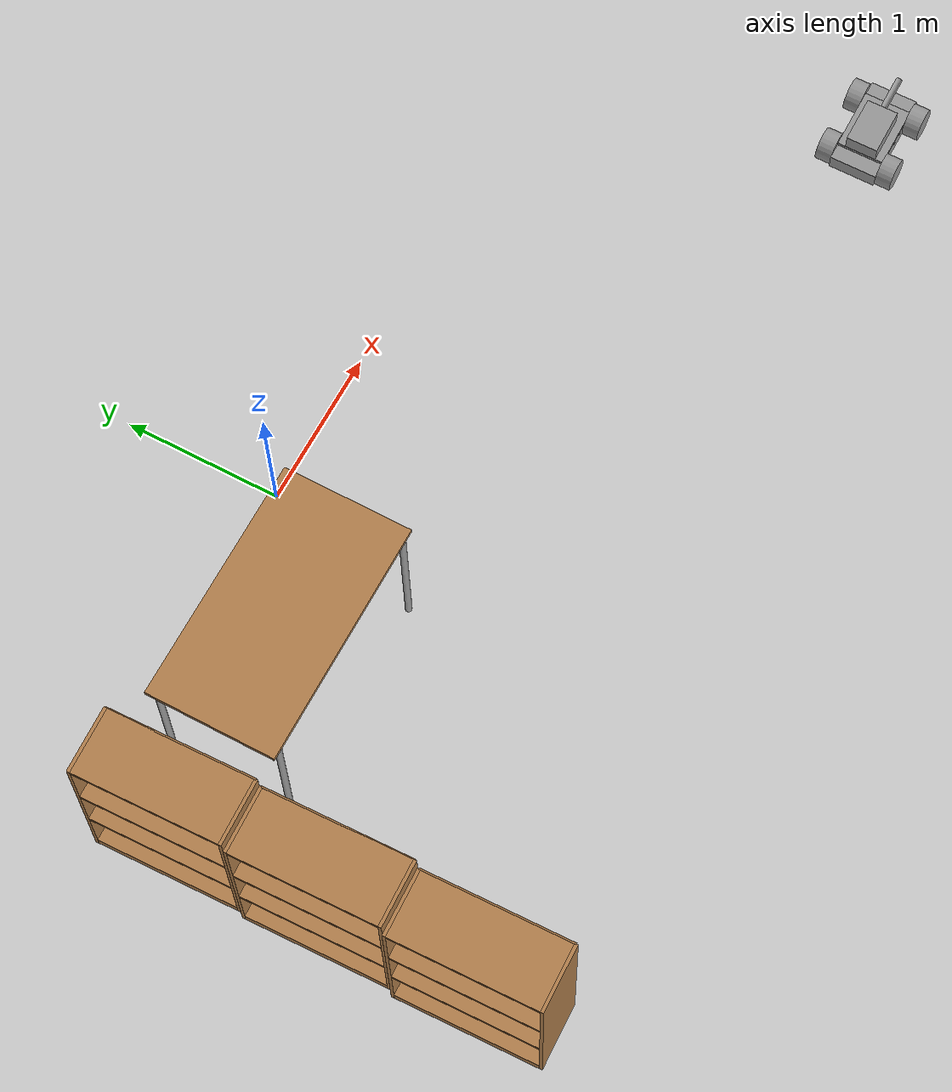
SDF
<sdf version="1.6">
 <world name="default">
  <model name="ground_plane">
   <static>1</static>
   <link name="link">
    <collision name="collision">
     <geometry><plane><normal>0 0 1</normal><size>100 100</size></plane></geometry>
     <surface>
      <contact><collide_bitmask>65535</collide_bitmask></contact>
      <friction><ode><mu>100</mu><mu2>50</mu2></ode></friction>
     </surface>
    </collision>
    <visual name="visual">
     <cast_shadows>0</cast_shadows>
     <geometry><plane><normal>0 0 1</normal><size>100 100</size></plane></geometry>
     <material>
      <script><uri>file://media/materials/scripts/gazebo.material</uri><name>Gazebo/Grey</name></script>
     </material>
    </visual>
   </link>
  </model>
  <model name="table_0">
   <static>1</static>
   <link name="link">
    <collision name="surface">
     <pose>0 0 1 0 -0 0</pose>
     <geometry><box><size>1.5 0.8 0.03</size></box></geometry>
     <surface><friction><ode><mu>0.6</mu><mu2>0.6</mu2></ode></friction></surface>
    </collision>
    <visual name="visual1">
     <pose>0 0 1 0 -0 0</pose>
     <geometry><box><size>1.5 0.8 0.03</size></box></geometry>
     <material>
      <script><uri>file://media/materials/scripts/gazebo.material</uri><name>Gazebo/Wood</name></script>
     </material>
    </visual>
    <collision name="front_left_leg">
     <pose>0.68 0.38 0.5 0 -0 0</pose>
     <geometry><cylinder><radius>0.02</radius><length>1</length></cylinder></geometry>
    </collision>
    <visual name="front_left_leg">
     <pose>0.68 0.38 0.5 0 -0 0</pose>
     <geometry><cylinder><radius>0.02</radius><length>1</length></cylinder></geometry>
     <material>
      <script><uri>file://media/materials/scripts/gazebo.material</uri><name>Gazebo/Grey</name></script>
     </material>
    </visual>
    <collision name="front_right_leg">
     <pose>0.68 -0.38 0.5 0 -0 0</pose>
     <geometry><cylinder><radius>0.02</radius><length>1</length></cylinder></geometry>
    </collision>
    <visual name="front_right_leg">
     <pose>0.68 -0.38 0.5 0 -0 0</pose>
     <geometry><cylinder><radius>0.02</radius><length>1</length></cylinder></geometry>
     <material>
      <script><uri>file://media/materials/scripts/gazebo.material</uri><name>Gazebo/Grey</name></script>
     </material>
    </visual>
    <collision name="back_right_leg">
     <pose>-0.68 -0.38 0.5 0 -0 0</pose>
     <geometry><cylinder><radius>0.02</radius><length>1</length></cylinder></geometry>
    </collision>
    <visual name="back_right_leg">
     <pose>-0.68 -0.38 0.5 0 -0 0</pose>
     <geometry><cylinder><radius>0.02</radius><length>1</length></cylinder></geometry>
     <material>
      <script><uri>file://media/materials/scripts/gazebo.material</uri><name>Gazebo/Grey</name></script>
     </material>
    </visual>
    <collision name="back_left_leg">
     <pose>-0.68 0.38 0.5 0 -0 0</pose>
     <geometry><cylinder><radius>0.02</radius><length>1</length></cylinder></geometry>
    </collision>
    <visual name="back_left_leg">
     <pose>-0.68 0.38 0.5 0 -0 0</pose>
     <geometry><cylinder><radius>0.02</radius><length>1</length></cylinder></geometry>
     <material>
      <script><uri>file://media/materials/scripts/gazebo.material</uri><name>Gazebo/Grey</name></script>
     </material>
    </visual>
   </link>
   <pose>-0.933659 -0.643381 0 0 -0 0</pose>
  </model>
  <model name="bookshelf_0">
   <static>1</static>
   <link name="link">
    <inertial><mass>1</mass></inertial>
    <collision name="back">
     <pose>0 0.005 0.6 0 -0 0</pose>
     <geometry><box><size>0.9 0.01 1.2</size></box></geometry>
    </collision>
    <visual name="visual1">
     <pose>0 0.005 0.6 0 -0 0</pose>
     <geometry><box><size>0.9 0.01 1.2</size></box></geometry>
     <material>
      <script><uri>file://media/materials/scripts/gazebo.material</uri><name>Gazebo/Wood</name></script>
     </material>
    </visual>
    <collision name="left_side">
     <pose>0.45 -0.195 0.6 0 -0 0</pose>
     <geometry><box><size>0.02 0.4 1.2</size></box></geometry>
    </collision>
    <visual name="visual2">
     <pose>0.45 -0.195 0.6 0 -0 0</pose>
     <geometry><box><size>0.02 0.4 1.2</size></box></geometry>
     <material>
      <script><uri>file://media/materials/scripts/gazebo.material</uri><name>Gazebo/Wood</name></script>
     </material>
    </visual>
    <collision name="right_side">
     <pose>-0.45 -0.195 0.6 0 -0 0</pose>
     <geometry><box><size>0.02 0.4 1.2</size></box></geometry>
    </collision>
    <visual name="visual3">
     <pose>-0.45 -0.195 0.6 0 -0 0</pose>
     <geometry><box><size>0.02 0.4 1.2</size></box></geometry>
     <material>
      <script><uri>file://media/materials/scripts/gazebo.material</uri><name>Gazebo/Wood</name></script>
     </material>
    </visual>
    <collision name="bottom">
     <pose>0 -0.195 0.03 0 -0 0</pose>
     <geometry><box><size>0.88 0.4 0.06</size></box></geometry>
    </collision>
    <visual name="visual4">
     <pose>0 -0.195 0.03 0 -0 0</pose>
     <geometry><box><size>0.88 0.4 0.06</size></box></geometry>
     <material>
      <script><uri>file://media/materials/scripts/gazebo.material</uri><name>Gazebo/Wood</name></script>
     </material>
    </visual>
    <collision name="top">
     <pose>0 -0.195 1.19 0 -0 0</pose>
     <geometry><box><size>0.88 0.4 0.02</size></box></geometry>
    </collision>
    <visual name="visual5">
     <pose>0 -0.195 1.19 0 -0 0</pose>
     <geometry><box><size>0.88 0.4 0.02</size></box></geometry>
     <material>
      <script><uri>file://media/materials/scripts/gazebo.material</uri><name>Gazebo/Wood</name></script>
     </material>
    </visual>
    <collision name="low_shelf">
     <pose>0 -0.195 0.43 0 -0 0</pose>
     <geometry><box><size>0.88 0.4 0.02</size></box></geometry>
    </collision>
    <visual name="visual6">
     <pose>0 -0.195 0.43 0 -0 0</pose>
     <geometry><box><size>0.88 0.4 0.02</size></box></geometry>
     <material>
      <script><uri>file://media/materials/scripts/gazebo.material</uri><name>Gazebo/Wood</name></script>
     </material>
    </visual>
    <collision name="high_shelf">
     <pose>0 -0.195 0.8 0 -0 0</pose>
     <geometry><box><size>0.88 0.4 0.02</size></box></geometry>
    </collision>
    <visual name="visual7">
     <pose>0 -0.195 0.8 0 -0 0</pose>
     <geometry><box><size>0.88 0.4 0.02</size></box></geometry>
     <material>
      <script><uri>file://media/materials/scripts/gazebo.material</uri><name>Gazebo/Wood</name></script>
     </material>
    </visual>
   </link>
   <pose>-1.89229 -0.61162 0 0 0 -1.53942</pose>
  </model>
  <model name="bookshelf_0_clone">
   <static>1</static>
   <link name="link">
    <inertial><mass>1</mass></inertial>
    <collision name="back">
     <pose>0 0.005 0.6 0 -0 0</pose>
     <geometry><box><size>0.9 0.01 1.2</size></box></geometry>
    </collision>
    <visual name="visual1">
     <pose>0 0.005 0.6 0 -0 0</pose>
     <geometry><box><size>0.9 0.01 1.2</size></box></geometry>
     <material>
      <script><uri>file://media/materials/scripts/gazebo.material</uri><name>Gazebo/Wood</name></script>
     </material>
    </visual>
    <collision name="left_side">
     <pose>0.45 -0.195 0.6 0 -0 0</pose>
     <geometry><box><size>0.02 0.4 1.2</size></box></geometry>
    </collision>
    <visual name="visual2">
     <pose>0.45 -0.195 0.6 0 -0 0</pose>
     <geometry><box><size>0.02 0.4 1.2</size></box></geometry>
     <material>
      <script><uri>file://media/materials/scripts/gazebo.material</uri><name>Gazebo/Wood</name></script>
     </material>
    </visual>
    <collision name="right_side">
     <pose>-0.45 -0.195 0.6 0 -0 0</pose>
     <geometry><box><size>0.02 0.4 1.2</size></box></geometry>
    </collision>
    <visual name="visual3">
     <pose>-0.45 -0.195 0.6 0 -0 0</pose>
     <geometry><box><size>0.02 0.4 1.2</size></box></geometry>
     <material>
      <script><uri>file://media/materials/scripts/gazebo.material</uri><name>Gazebo/Wood</name></script>
     </material>
    </visual>
    <collision name="bottom">
     <pose>0 -0.195 0.03 0 -0 0</pose>
     <geometry><box><size>0.88 0.4 0.06</size></box></geometry>
    </collision>
    <visual name="visual4">
     <pose>0 -0.195 0.03 0 -0 0</pose>
     <geometry><box><size>0.88 0.4 0.06</size></box></geometry>
     <material>
      <script><uri>file://media/materials/scripts/gazebo.material</uri><name>Gazebo/Wood</name></script>
     </material>
    </visual>
    <collision name="top">
     <pose>0 -0.195 1.19 0 -0 0</pose>
     <geometry><box><size>0.88 0.4 0.02</size></box></geometry>
    </collision>
    <visual name="visual5">
     <pose>0 -0.195 1.19 0 -0 0</pose>
     <geometry><box><size>0.88 0.4 0.02</size></box></geometry>
     <material>
      <script><uri>file://media/materials/scripts/gazebo.material</uri><name>Gazebo/Wood</name></script>
     </material>
    </visual>
    <collision name="low_shelf">
     <pose>0 -0.195 0.43 0 -0 0</pose>
     <geometry><box><size>0.88 0.4 0.02</size></box></geometry>
    </collision>
    <visual name="visual6">
     <pose>0 -0.195 0.43 0 -0 0</pose>
     <geometry><box><size>0.88 0.4 0.02</size></box></geometry>
     <material>
      <script><uri>file://media/materials/scripts/gazebo.material</uri><name>Gazebo/Wood</name></script>
     </material>
    </visual>
    <collision name="high_shelf">
     <pose>0 -0.195 0.8 0 -0 0</pose>
     <geometry><box><size>0.88 0.4 0.02</size></box></geometry>
    </collision>
    <visual name="visual7">
     <pose>0 -0.195 0.8 0 -0 0</pose>
     <geometry><box><size>0.88 0.4 0.02</size></box></geometry>
     <material>
      <script><uri>file://media/materials/scripts/gazebo.material</uri><name>Gazebo/Wood</name></script>
     </material>
    </visual>
   </link>
   <pose>-1.88638 -1.55332 0 0 0 -1.53942</pose>
  </model>
  <model name="bookshelf_0_clone_0">
   <static>1</static>
   <link name="link">
    <inertial><mass>1</mass></inertial>
    <collision name="back">
     <pose>0 0.005 0.6 0 -0 0</pose>
     <geometry><box><size>0.9 0.01 1.2</size></box></geometry>
    </collision>
    <visual name="visual1">
     <pose>0 0.005 0.6 0 -0 0</pose>
     <geometry><box><size>0.9 0.01 1.2</size></box></geometry>
     <material>
      <script><uri>file://media/materials/scripts/gazebo.material</uri><name>Gazebo/Wood</name></script>
     </material>
    </visual>
    <collision name="left_side">
     <pose>0.45 -0.195 0.6 0 -0 0</pose>
     <geometry><box><size>0.02 0.4 1.2</size></box></geometry>
    </collision>
    <visual name="visual2">
     <pose>0.45 -0.195 0.6 0 -0 0</pose>
     <geometry><box><size>0.02 0.4 1.2</size></box></geometry>
     <material>
      <script><uri>file://media/materials/scripts/gazebo.material</uri><name>Gazebo/Wood</name></script>
     </material>
    </visual>
    <collision name="right_side">
     <pose>-0.45 -0.195 0.6 0 -0 0</pose>
     <geometry><box><size>0.02 0.4 1.2</size></box></geometry>
    </collision>
    <visual name="visual3">
     <pose>-0.45 -0.195 0.6 0 -0 0</pose>
     <geometry><box><size>0.02 0.4 1.2</size></box></geometry>
     <material>
      <script><uri>file://media/materials/scripts/gazebo.material</uri><name>Gazebo/Wood</name></script>
     </material>
    </visual>
    <collision name="bottom">
     <pose>0 -0.195 0.03 0 -0 0</pose>
     <geometry><box><size>0.88 0.4 0.06</size></box></geometry>
    </collision>
    <visual name="visual4">
     <pose>0 -0.195 0.03 0 -0 0</pose>
     <geometry><box><size>0.88 0.4 0.06</size></box></geometry>
     <material>
      <script><uri>file://media/materials/scripts/gazebo.material</uri><name>Gazebo/Wood</name></script>
     </material>
    </visual>
    <collision name="top">
     <pose>0 -0.195 1.19 0 -0 0</pose>
     <geometry><box><size>0.88 0.4 0.02</size></box></geometry>
    </collision>
    <visual name="visual5">
     <pose>0 -0.195 1.19 0 -0 0</pose>
     <geometry><box><size>0.88 0.4 0.02</size></box></geometry>
     <material>
      <script><uri>file://media/materials/scripts/gazebo.material</uri><name>Gazebo/Wood</name></script>
     </material>
    </visual>
    <collision name="low_shelf">
     <pose>0 -0.195 0.43 0 -0 0</pose>
     <geometry><box><size>0.88 0.4 0.02</size></box></geometry>
    </collision>
    <visual name="visual6">
     <pose>0 -0.195 0.43 0 -0 0</pose>
     <geometry><box><size>0.88 0.4 0.02</size></box></geometry>
     <material>
      <script><uri>file://media/materials/scripts/gazebo.material</uri><name>Gazebo/Wood</name></script>
     </material>
    </visual>
    <collision name="high_shelf">
     <pose>0 -0.195 0.8 0 -0 0</pose>
     <geometry><box><size>0.88 0.4 0.02</size></box></geometry>
    </collision>
    <visual name="visual7">
     <pose>0 -0.195 0.8 0 -0 0</pose>
     <geometry><box><size>0.88 0.4 0.02</size></box></geometry>
     <material>
      <script><uri>file://media/materials/scripts/gazebo.material</uri><name>Gazebo/Wood</name></script>
     </material>
    </visual>
   </link>
   <pose>-1.88893 -2.49325 0 0 0 -1.53942</pose>
  </model>
  <model name="TankBot_0">
   <link name="link_0">
    <pose>4.02291 -0.912872 0.464375 0 -0 0</pose>
    <inertial>
     <mass>1</mass>
     <inertia>
      <ixx>0.166667</ixx>
      <ixy>0</ixy>
      <ixz>0</ixz>
      <iyy>0.166667</iyy>
      <iyz>0</iyz>
      <izz>0.166667</izz>
     </inertia>
    </inertial>
    <visual name="visual">
     <geometry><box><size>0.6 0.3 0.1</size></box></geometry>
     <material>
      <lighting>1</lighting>
      <script><uri>file://media/materials/scripts/gazebo.material</uri><name>Gazebo/Grey</name></script>
      <shader type="pixel"><normal_map>__default__</normal_map></shader>
      <ambient>0.3 0.3 0.3 1</ambient>
      <diffuse>0.7 0.7 0.7 1</diffuse>
      <specular>0.01 0.01 0.01 1</specular>
      <emissive>0 0 0 1</emissive>
     </material>
    </visual>
    <collision name="collision">
     <geometry><box><size>0.6 0.3 0.1</size></box></geometry>
     <surface>
      <friction>
       <ode><mu>1</mu><mu2>1</mu2><fdir1>0 0 0</fdir1><slip1>0</slip1><slip2>0</slip2></ode>
       <torsional>
        <coefficient>1</coefficient>
        <patch_radius>0</patch_radius>
        <surface_radius>0</surface_radius>
        <use_patch_radius>1</use_patch_radius>
        <ode><slip>0</slip></ode>
       </torsional>
      </friction>
      <bounce><restitution_coefficient>0</restitution_coefficient><threshold>1e+06</threshold></bounce>
      <contact>
       <collide_without_contact>0</collide_without_contact>
       <collide_without_contact_bitmask>1</collide_without_contact_bitmask>
       <collide_bitmask>1</collide_bitmask>
       <ode>
        <soft_cfm>0</soft_cfm>
        <soft_erp>0.2</soft_erp>
        <kp>1e+13</kp>
        <kd>1</kd>
        <max_vel>0.01</max_vel>
        <min_depth>0</min_depth>
       </ode>
       <bullet>
        <split_impulse>1</split_impulse>
        <split_impulse_penetration_threshold>-0.01</split_impulse_penetration_threshold>
        <soft_cfm>0</soft_cfm>
        <soft_erp>0.2</soft_erp>
        <kp>1e+13</kp>
        <kd>1</kd>
       </bullet>
      </contact>
     </surface>
    </collision>
   </link>
   <link name="link_1_clone">
    <pose>3.82291 -1.11288 0.464375 1.5707 -0 0</pose>
    <inertial>
     <mass>1</mass>
     <inertia><ixx>0.145833</ixx><ixy>0</ixy><ixz>0</ixz><iyy>0.145833</iyy><iyz>0</iyz><izz>0.125</izz></inertia>
    </inertial>
    <visual name="visual">
     <geometry><cylinder><radius>0.1</radius><length>0.1</length></cylinder></geometry>
     <material>
      <lighting>1</lighting>
      <script><uri>file://media/materials/scripts/gazebo.material</uri><name>Gazebo/Grey</name></script>
      <shader type="pixel"><normal_map>__default__</normal_map></shader>
      <ambient>0.3 0.3 0.3 1</ambient>
      <diffuse>0.7 0.7 0.7 1</diffuse>
      <specular>0.01 0.01 0.01 1</specular>
      <emissive>0 0 0 1</emissive>
     </material>
    </visual>
    <collision name="collision">
     <geometry><cylinder><radius>0.1</radius><length>0.1</length></cylinder></geometry>
     <surface>
      <friction>
       <ode><mu>1</mu><mu2>1</mu2><fdir1>0 0 0</fdir1><slip1>0</slip1><slip2>0</slip2></ode>
       <torsional>
        <coefficient>1</coefficient>
        <patch_radius>0</patch_radius>
        <surface_radius>0</surface_radius>
        <use_patch_radius>1</use_patch_radius>
        <ode><slip>0</slip></ode>
       </torsional>
      </friction>
      <bounce><restitution_coefficient>0</restitution_coefficient><threshold>1e+06</threshold></bounce>
      <contact>
       <collide_without_contact>0</collide_without_contact>
       <collide_without_contact_bitmask>1</collide_without_contact_bitmask>
       <collide_bitmask>1</collide_bitmask>
       <ode>
        <soft_cfm>0</soft_cfm>
        <soft_erp>0.2</soft_erp>
        <kp>1e+13</kp>
        <kd>1</kd>
        <max_vel>0.01</max_vel>
        <min_depth>0</min_depth>
       </ode>
       <bullet>
        <split_impulse>1</split_impulse>
        <split_impulse_penetration_threshold>-0.01</split_impulse_penetration_threshold>
        <soft_cfm>0</soft_cfm>
        <soft_erp>0.2</soft_erp>
        <kp>1e+13</kp>
        <kd>1</kd>
       </bullet>
      </contact>
     </surface>
    </collision>
   </link>
   <link name="link_1_clone_0">
    <pose>4.22291 -1.11288 0.464375 1.5707 -0 0</pose>
    <inertial>
     <mass>1</mass>
     <inertia><ixx>0.145833</ixx><ixy>0</ixy><ixz>0</ixz><iyy>0.145833</iyy><iyz>0</iyz><izz>0.125</izz></inertia>
    </inertial>
    <visual name="visual">
     <geometry><cylinder><radius>0.1</radius><length>0.1</length></cylinder></geometry>
     <material>
      <lighting>1</lighting>
      <script><uri>file://media/materials/scripts/gazebo.material</uri><name>Gazebo/Grey</name></script>
      <shader type="pixel"><normal_map>__default__</normal_map></shader>
      <ambient>0.3 0.3 0.3 1</ambient>
      <diffuse>0.7 0.7 0.7 1</diffuse>
      <specular>0.01 0.01 0.01 1</specular>
      <emissive>0 0 0 1</emissive>
     </material>
    </visual>
    <collision name="collision">
     <geometry><cylinder><radius>0.1</radius><length>0.1</length></cylinder></geometry>
     <surface>
      <friction>
       <ode><mu>1</mu><mu2>1</mu2><fdir1>0 0 0</fdir1><slip1>0</slip1><slip2>0</slip2></ode>
       <torsional>
        <coefficient>1</coefficient>
        <patch_radius>0</patch_radius>
        <surface_radius>0</surface_radius>
        <use_patch_radius>1</use_patch_radius>
        <ode><slip>0</slip></ode>
       </torsional>
      </friction>
      <bounce><restitution_coefficient>0</restitution_coefficient><threshold>1e+06</threshold></bounce>
      <contact>
       <collide_without_contact>0</collide_without_contact>
       <collide_without_contact_bitmask>1</collide_without_contact_bitmask>
       <collide_bitmask>1</collide_bitmask>
       <ode>
        <soft_cfm>0</soft_cfm>
        <soft_erp>0.2</soft_erp>
        <kp>1e+13</kp>
        <kd>1</kd>
        <max_vel>0.01</max_vel>
        <min_depth>0</min_depth>
       </ode>
       <bullet>
        <split_impulse>1</split_impulse>
        <split_impulse_penetration_threshold>-0.01</split_impulse_penetration_threshold>
        <soft_cfm>0</soft_cfm>
        <soft_erp>0.2</soft_erp>
        <kp>1e+13</kp>
        <kd>1</kd>
       </bullet>
      </contact>
     </surface>
    </collision>
   </link>
   <link name="link_1_clone_0_clone">
    <pose>3.82291 -0.712862 0.464375 1.5707 -0 0</pose>
    <inertial>
     <mass>1</mass>
     <inertia><ixx>0.145833</ixx><ixy>0</ixy><ixz>0</ixz><iyy>0.145833</iyy><iyz>0</iyz><izz>0.125</izz></inertia>
    </inertial>
    <visual name="visual">
     <geometry><cylinder><radius>0.1</radius><length>0.1</length></cylinder></geometry>
     <material>
      <lighting>1</lighting>
      <script><uri>file://media/materials/scripts/gazebo.material</uri><name>Gazebo/Grey</name></script>
      <shader type="pixel"><normal_map>__default__</normal_map></shader>
      <ambient>0.3 0.3 0.3 1</ambient>
      <diffuse>0.7 0.7 0.7 1</diffuse>
      <specular>0.01 0.01 0.01 1</specular>
      <emissive>0 0 0 1</emissive>
     </material>
    </visual>
    <collision name="collision">
     <geometry><cylinder><radius>0.1</radius><length>0.1</length></cylinder></geometry>
     <surface>
      <friction>
       <ode><mu>1</mu><mu2>1</mu2><fdir1>0 0 0</fdir1><slip1>0</slip1><slip2>0</slip2></ode>
       <torsional>
        <coefficient>1</coefficient>
        <patch_radius>0</patch_radius>
        <surface_radius>0</surface_radius>
        <use_patch_radius>1</use_patch_radius>
        <ode><slip>0</slip></ode>
       </torsional>
      </friction>
      <bounce><restitution_coefficient>0</restitution_coefficient><threshold>1e+06</threshold></bounce>
      <contact>
       <collide_without_contact>0</collide_without_contact>
       <collide_without_contact_bitmask>1</collide_without_contact_bitmask>
       <collide_bitmask>1</collide_bitmask>
       <ode>
        <soft_cfm>0</soft_cfm>
        <soft_erp>0.2</soft_erp>
        <kp>1e+13</kp>
        <kd>1</kd>
        <max_vel>0.01</max_vel>
        <min_depth>0</min_depth>
       </ode>
       <bullet>
        <split_impulse>1</split_impulse>
        <split_impulse_penetration_threshold>-0.01</split_impulse_penetration_threshold>
        <soft_cfm>0</soft_cfm>
        <soft_erp>0.2</soft_erp>
        <kp>1e+13</kp>
        <kd>1</kd>
       </bullet>
      </contact>
     </surface>
    </collision>
   </link>
   <link name="link_1_clone_clone">
    <pose>4.22291 -0.712862 0.464375 1.5707 -0 0</pose>
    <inertial>
     <mass>1</mass>
     <inertia><ixx>0.145833</ixx><ixy>0</ixy><ixz>0</ixz><iyy>0.145833</iyy><iyz>0</iyz><izz>0.125</izz></inertia>
    </inertial>
    <visual name="visual">
     <geometry><cylinder><radius>0.1</radius><length>0.1</length></cylinder></geometry>
     <material>
      <lighting>1</lighting>
      <script><uri>file://media/materials/scripts/gazebo.material</uri><name>Gazebo/Grey</name></script>
      <shader type="pixel"><normal_map>__default__</normal_map></shader>
      <ambient>0.3 0.3 0.3 1</ambient>
      <diffuse>0.7 0.7 0.7 1</diffuse>
      <specular>0.01 0.01 0.01 1</specular>
      <emissive>0 0 0 1</emissive>
     </material>
    </visual>
    <collision name="collision">
     <geometry><cylinder><radius>0.1</radius><length>0.1</length></cylinder></geometry>
     <surface>
      <friction>
       <ode><mu>1</mu><mu2>1</mu2><fdir1>0 0 0</fdir1><slip1>0</slip1><slip2>0</slip2></ode>
       <torsional>
        <coefficient>1</coefficient>
        <patch_radius>0</patch_radius>
        <surface_radius>0</surface_radius>
        <use_patch_radius>1</use_patch_radius>
        <ode><slip>0</slip></ode>
       </torsional>
      </friction>
      <bounce><restitution_coefficient>0</restitution_coefficient><threshold>1e+06</threshold></bounce>
      <contact>
       <collide_without_contact>0</collide_without_contact>
       <collide_without_contact_bitmask>1</collide_without_contact_bitmask>
       <collide_bitmask>1</collide_bitmask>
       <ode>
        <soft_cfm>0</soft_cfm>
        <soft_erp>0.2</soft_erp>
        <kp>1e+13</kp>
        <kd>1</kd>
        <max_vel>0.01</max_vel>
        <min_depth>0</min_depth>
       </ode>
       <bullet>
        <split_impulse>1</split_impulse>
        <split_impulse_penetration_threshold>-0.01</split_impulse_penetration_threshold>
        <soft_cfm>0</soft_cfm>
        <soft_erp>0.2</soft_erp>
        <kp>1e+13</kp>
        <kd>1</kd>
       </bullet>
      </contact>
     </surface>
    </collision>
   </link>
   <link name="link_2_clone">
    <pose>4.02291 -0.912872 0.509375 0 -0 0</pose>
    <inertial>
     <mass>1</mass>
     <inertia>
      <ixx>0.166667</ixx>
      <ixy>0</ixy>
      <ixz>0</ixz>
      <iyy>0.166667</iyy>
      <iyz>0</iyz>
      <izz>0.166667</izz>
     </inertia>
    </inertial>
    <visual name="visual">
     <geometry><box><size>0.4 0.3 0.05</size></box></geometry>
     <material>
      <lighting>1</lighting>
      <script><uri>file://media/materials/scripts/gazebo.material</uri><name>Gazebo/Grey</name></script>
      <shader type="pixel"><normal_map>__default__</normal_map></shader>
      <ambient>0.3 0.3 0.3 1</ambient>
      <diffuse>0.7 0.7 0.7 1</diffuse>
      <specular>0.01 0.01 0.01 1</specular>
      <emissive>0 0 0 1</emissive>
     </material>
    </visual>
    <collision name="collision">
     <geometry><box><size>0.4 0.3 0.05</size></box></geometry>
     <surface>
      <friction>
       <ode><mu>1</mu><mu2>1</mu2><fdir1>0 0 0</fdir1><slip1>0</slip1><slip2>0</slip2></ode>
       <torsional>
        <coefficient>1</coefficient>
        <patch_radius>0</patch_radius>
        <surface_radius>0</surface_radius>
        <use_patch_radius>1</use_patch_radius>
        <ode><slip>0</slip></ode>
       </torsional>
      </friction>
      <bounce><restitution_coefficient>0</restitution_coefficient><threshold>1e+06</threshold></bounce>
      <contact>
       <collide_without_contact>0</collide_without_contact>
       <collide_without_contact_bitmask>1</collide_without_contact_bitmask>
       <collide_bitmask>1</collide_bitmask>
       <ode>
        <soft_cfm>0</soft_cfm>
        <soft_erp>0.2</soft_erp>
        <kp>1e+13</kp>
        <kd>1</kd>
        <max_vel>0.01</max_vel>
        <min_depth>0</min_depth>
       </ode>
       <bullet>
        <split_impulse>1</split_impulse>
        <split_impulse_penetration_threshold>-0.01</split_impulse_penetration_threshold>
        <soft_cfm>0</soft_cfm>
        <soft_erp>0.2</soft_erp>
        <kp>1e+13</kp>
        <kd>1</kd>
       </bullet>
      </contact>
     </surface>
    </collision>
   </link>
   <link name="link_3_clone">
    <pose>3.97291 -0.912872 0.584375 0 -0 0</pose>
    <inertial>
     <mass>1</mass>
     <inertia>
      <ixx>0.166667</ixx>
      <ixy>0</ixy>
      <ixz>0</ixz>
      <iyy>0.166667</iyy>
      <iyz>0</iyz>
      <izz>0.166667</izz>
     </inertia>
    </inertial>
    <visual name="visual">
     <geometry><box><size>0.3 0.2 0.1</size></box></geometry>
     <material>
      <lighting>1</lighting>
      <script><uri>file://media/materials/scripts/gazebo.material</uri><name>Gazebo/Grey</name></script>
      <shader type="pixel"><normal_map>__default__</normal_map></shader>
      <ambient>0.3 0.3 0.3 1</ambient>
      <diffuse>0.7 0.7 0.7 1</diffuse>
      <specular>0.01 0.01 0.01 1</specular>
      <emissive>0 0 0 1</emissive>
     </material>
    </visual>
    <collision name="collision">
     <geometry><box><size>0.3 0.2 0.1</size></box></geometry>
     <surface>
      <friction>
       <ode><mu>1</mu><mu2>1</mu2><fdir1>0 0 0</fdir1><slip1>0</slip1><slip2>0</slip2></ode>
       <torsional>
        <coefficient>1</coefficient>
        <patch_radius>0</patch_radius>
        <surface_radius>0</surface_radius>
        <use_patch_radius>1</use_patch_radius>
        <ode><slip>0</slip></ode>
       </torsional>
      </friction>
      <bounce><restitution_coefficient>0</restitution_coefficient><threshold>1e+06</threshold></bounce>
      <contact>
       <collide_without_contact>0</collide_without_contact>
       <collide_without_contact_bitmask>1</collide_without_contact_bitmask>
       <collide_bitmask>1</collide_bitmask>
       <ode>
        <soft_cfm>0</soft_cfm>
        <soft_erp>0.2</soft_erp>
        <kp>1e+13</kp>
        <kd>1</kd>
        <max_vel>0.01</max_vel>
        <min_depth>0</min_depth>
       </ode>
       <bullet>
        <split_impulse>1</split_impulse>
        <split_impulse_penetration_threshold>-0.01</split_impulse_penetration_threshold>
        <soft_cfm>0</soft_cfm>
        <soft_erp>0.2</soft_erp>
        <kp>1e+13</kp>
        <kd>1</kd>
       </bullet>
      </contact>
     </surface>
    </collision>
   </link>
   <link name="link_4_clone">
    <pose>4.24792 -0.912872 0.584375 1.5707 0 1.5707</pose>
    <inertial>
     <mass>1</mass>
     <inertia><ixx>0.145833</ixx><ixy>0</ixy><ixz>0</ixz><iyy>0.145833</iyy><iyz>0</iyz><izz>0.125</izz></inertia>
    </inertial>
    <visual name="visual">
     <geometry><cylinder><radius>0.02</radius><length>0.25</length></cylinder></geometry>
     <material>
      <lighting>1</lighting>
      <script><uri>file://media/materials/scripts/gazebo.material</uri><name>Gazebo/Grey</name></script>
      <shader type="pixel"><normal_map>__default__</normal_map></shader>
      <ambient>0.3 0.3 0.3 1</ambient>
      <diffuse>0.7 0.7 0.7 1</diffuse>
      <specular>0.01 0.01 0.01 1</specular>
      <emissive>0 0 0 1</emissive>
     </material>
    </visual>
    <collision name="collision">
     <geometry><cylinder><radius>0.02</radius><length>0.25</length></cylinder></geometry>
     <surface>
      <friction>
       <ode><mu>1</mu><mu2>1</mu2><fdir1>0 0 0</fdir1><slip1>0</slip1><slip2>0</slip2></ode>
       <torsional>
        <coefficient>1</coefficient>
        <patch_radius>0</patch_radius>
        <surface_radius>0</surface_radius>
        <use_patch_radius>1</use_patch_radius>
        <ode><slip>0</slip></ode>
       </torsional>
      </friction>
      <bounce><restitution_coefficient>0</restitution_coefficient><threshold>1e+06</threshold></bounce>
      <contact>
       <collide_without_contact>0</collide_without_contact>
       <collide_without_contact_bitmask>1</collide_without_contact_bitmask>
       <collide_bitmask>1</collide_bitmask>
       <ode>
        <soft_cfm>0</soft_cfm>
        <soft_erp>0.2</soft_erp>
        <kp>1e+13</kp>
        <kd>1</kd>
        <max_vel>0.01</max_vel>
        <min_depth>0</min_depth>
       </ode>
       <bullet>
        <split_impulse>1</split_impulse>
        <split_impulse_penetration_threshold>-0.01</split_impulse_penetration_threshold>
        <soft_cfm>0</soft_cfm>
        <soft_erp>0.2</soft_erp>
        <kp>1e+13</kp>
        <kd>1</kd>
       </bullet>
      </contact>
     </surface>
    </collision>
   </link>
   <joint name="link_0_JOINT_2" type="revolute">
    <parent>link_0</parent>
    <child>link_1_clone_clone</child>
    <axis>
     <xyz>0 0 1</xyz>
     <use_parent_model_frame>0</use_parent_model_frame>
     <limit>
      <lower>-1.79769e+308</lower>
      <upper>1.79769e+308</upper>
      <effort>-1</effort>
      <velocity>-1</velocity>
     </limit>
     <dynamics>
      <spring_reference>0</spring_reference>
      <spring_stiffness>0</spring_stiffness>
      <damping>0</damping>
     </dynamics>
    </axis>
    <physics>
     <ode><limit><cfm>0</cfm><erp>0.2</erp></limit><suspension><cfm>0</cfm><erp>0.2</erp></suspension></ode>
    </physics>
   </joint>
   <joint name="link_0_JOINT_3" type="revolute">
    <parent>link_0</parent>
    <child>link_1_clone_0</child>
    <axis>
     <xyz>0 0 1</xyz>
     <use_parent_model_frame>0</use_parent_model_frame>
     <limit>
      <lower>-1.79769e+308</lower>
      <upper>1.79769e+308</upper>
      <effort>-1</effort>
      <velocity>-1</velocity>
     </limit>
     <dynamics>
      <spring_reference>0</spring_reference>
      <spring_stiffness>0</spring_stiffness>
      <damping>0</damping>
     </dynamics>
    </axis>
    <physics>
     <ode><limit><cfm>0</cfm><erp>0.2</erp></limit><suspension><cfm>0</cfm><erp>0.2</erp></suspension></ode>
    </physics>
   </joint>
   <joint name="link_0_JOINT_4" type="revolute">
    <parent>link_0</parent>
    <child>link_1_clone_0_clone</child>
    <axis>
     <xyz>0 0 1</xyz>
     <use_parent_model_frame>0</use_parent_model_frame>
     <limit>
      <lower>-1.79769e+308</lower>
      <upper>1.79769e+308</upper>
      <effort>-1</effort>
      <velocity>-1</velocity>
     </limit>
     <dynamics>
      <spring_reference>0</spring_reference>
      <spring_stiffness>0</spring_stiffness>
      <damping>0</damping>
     </dynamics>
    </axis>
    <physics>
     <ode><limit><cfm>0</cfm><erp>0.2</erp></limit><suspension><cfm>0</cfm><erp>0.2</erp></suspension></ode>
    </physics>
   </joint>
   <joint name="link_0_JOINT_5" type="revolute">
    <parent>link_0</parent>
    <child>link_1_clone</child>
    <axis>
     <xyz>0 0 1</xyz>
     <use_parent_model_frame>0</use_parent_model_frame>
     <limit>
      <lower>-1.79769e+308</lower>
      <upper>1.79769e+308</upper>
      <effort>-1</effort>
      <velocity>-1</velocity>
     </limit>
     <dynamics>
      <spring_reference>0</spring_reference>
      <spring_stiffness>0</spring_stiffness>
      <damping>0</damping>
     </dynamics>
    </axis>
    <physics>
     <ode><limit><cfm>0</cfm><erp>0.2</erp></limit><suspension><cfm>0</cfm><erp>0.2</erp></suspension></ode>
    </physics>
   </joint>
   <joint name="link_0_JOINT_7" type="fixed">
    <parent>link_0</parent>
    <child>link_2_clone</child>
    <physics>
     <ode><limit><cfm>0</cfm><erp>0.2</erp></limit><suspension><cfm>0</cfm><erp>0.2</erp></suspension></ode>
    </physics>
   </joint>
   <joint name="link_2_clone_JOINT_9" type="fixed">
    <parent>link_2_clone</parent>
    <child>link_3_clone</child>
    <physics>
     <ode><limit><cfm>0</cfm><erp>0.2</erp></limit><suspension><cfm>0</cfm><erp>0.2</erp></suspension></ode>
    </physics>
   </joint>
   <joint name="link_3_clone_JOINT_11" type="fixed">
    <parent>link_3_clone</parent>
    <child>link_4_clone</child>
    <physics>
     <ode><limit><cfm>0</cfm><erp>0.2</erp></limit><suspension><cfm>0</cfm><erp>0.2</erp></suspension></ode>
    </physics>
   </joint>
   <static>0</static>
   <pose>-0.21857 -1.15068 -0.364372 -1e-06 -0 0.007195</pose>
  </model>
 </world>
</sdf>
